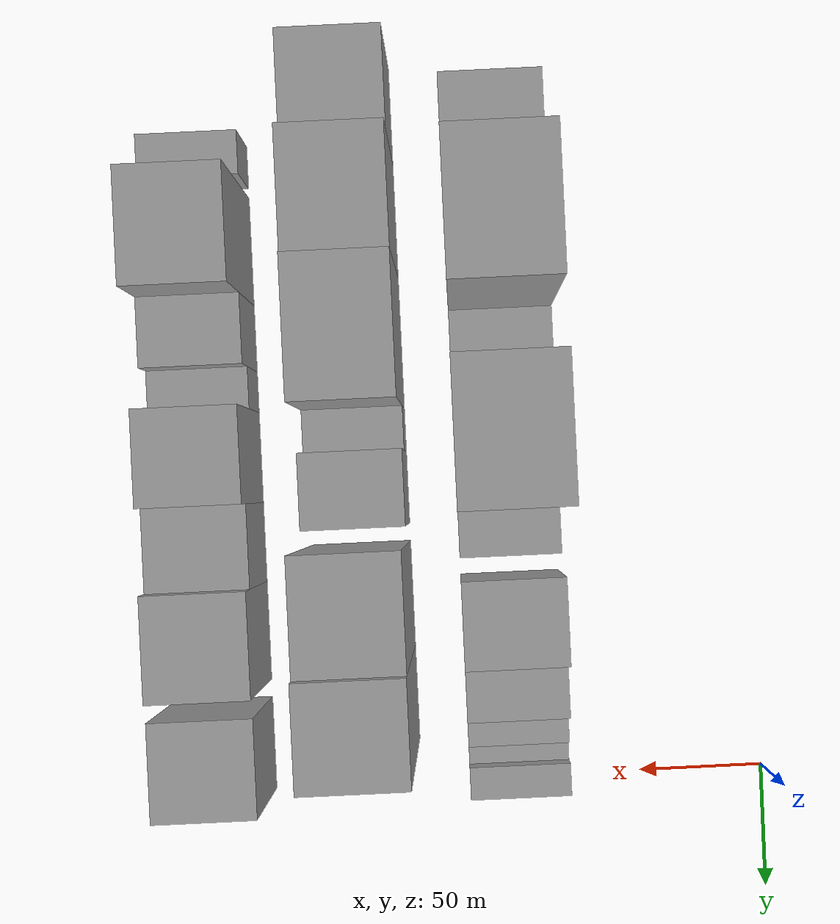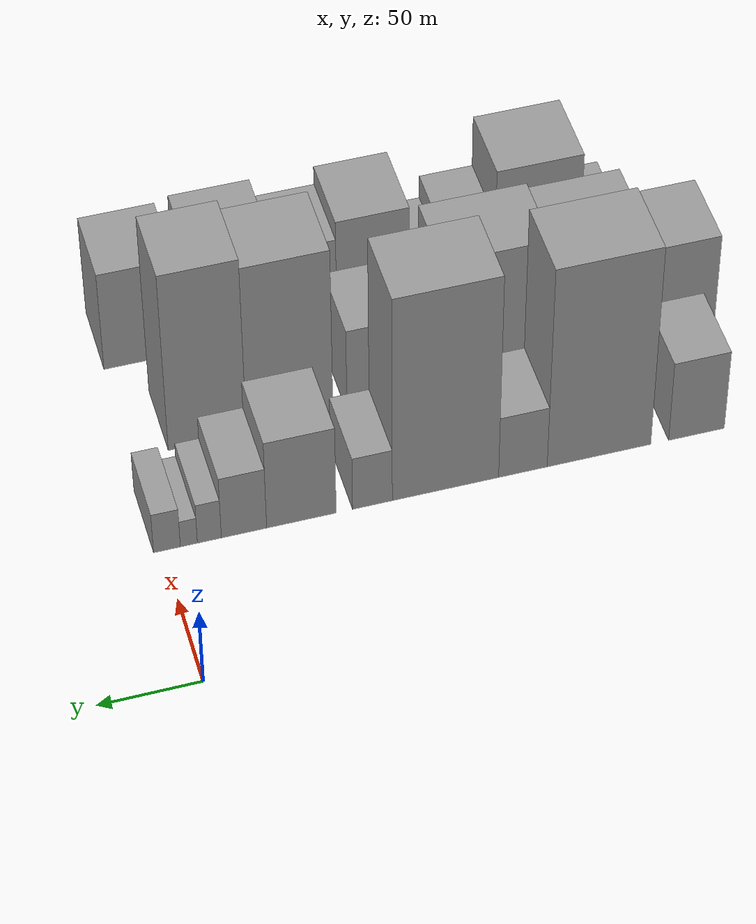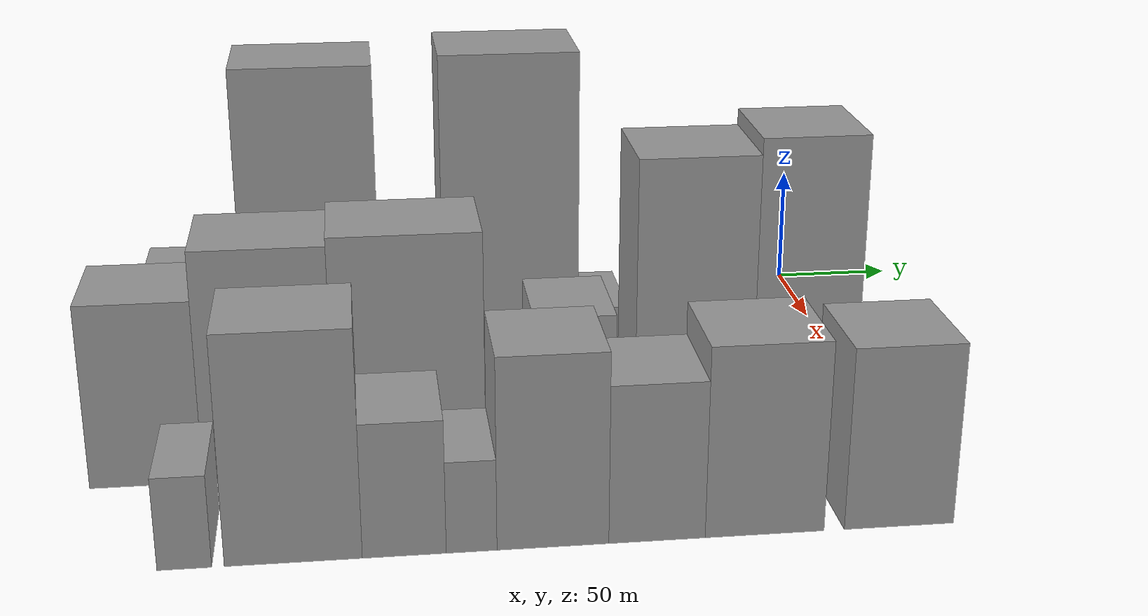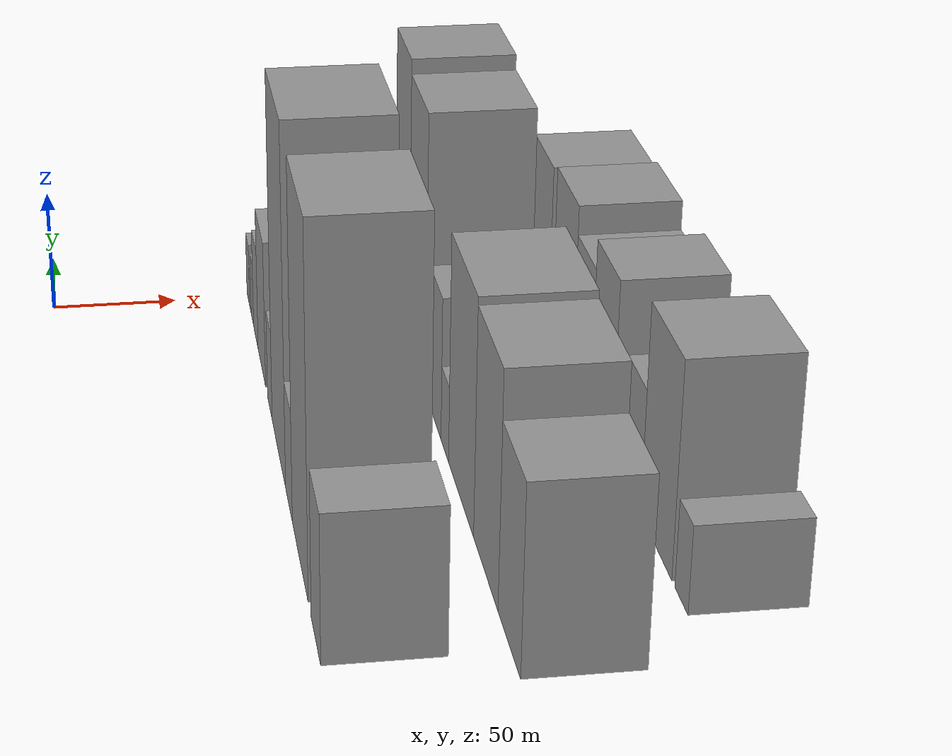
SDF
<sdf version="1.6">
 <world name="default">
  <model name="building_11">
   <static>1</static>
   <pose>100.0000 -263.9898 0 0.000000 0.000000 0.000000</pose>
   <link name="link">
    <pose>0 0 27.00 0 0 0</pose>
    <collision name="collision"><geometry><box><size>40.0000 28.3131 54.0000</size></box></geometry></collision>
    <visual name="visual">
     <cast_shadows>0</cast_shadows>
     <geometry><box><size>40.0000 28.3131 54.0000</size></box></geometry>
     <material>
      <script>
       <uri>model://grey_wall/materials/scripts</uri>
       <uri>model://grey_wall/materials/textures</uri>
       <name>vrc/grey_wall</name>
      </script>
     </material>
    </visual>
   </link>
  </model>
  <model name="building_12">
   <static>1</static>
   <pose>100.0000 -214.7420 0 0.000000 0.000000 0.000000</pose>
   <link name="link">
    <pose>0 0 67.50 0 0 0</pose>
    <collision name="collision"><geometry><box><size>40.0000 52.1824 135.0000</size></box></geometry></collision>
    <visual name="visual">
     <cast_shadows>0</cast_shadows>
     <geometry><box><size>40.0000 52.1824 135.0000</size></box></geometry>
     <material>
      <script>
       <uri>model://grey_wall/materials/scripts</uri>
       <uri>model://grey_wall/materials/textures</uri>
       <name>vrc/grey_wall</name>
      </script>
     </material>
    </visual>
   </link>
  </model>
  <model name="building_13">
   <static>1</static>
   <pose>100.0000 -176.5291 0 0.000000 0.000000 0.000000</pose>
   <link name="link">
    <pose>0 0 21.00 0 0 0</pose>
    <collision name="collision"><geometry><box><size>40.0000 24.2435 42.0000</size></box></geometry></collision>
    <visual name="visual">
     <cast_shadows>0</cast_shadows>
     <geometry><box><size>40.0000 24.2435 42.0000</size></box></geometry>
     <material>
      <script>
       <uri>model://grey_wall/materials/scripts</uri>
       <uri>model://grey_wall/materials/textures</uri>
       <name>vrc/grey_wall</name>
      </script>
     </material>
    </visual>
   </link>
  </model>
  <model name="building_14">
   <static>1</static>
   <pose>100.0000 -138.0995 0 0.000000 0.000000 0.000000</pose>
   <link name="link">
    <pose>0 0 69.00 0 0 0</pose>
    <collision name="collision"><geometry><box><size>40.0000 52.6157 138.0000</size></box></geometry></collision>
    <visual name="visual">
     <cast_shadows>0</cast_shadows>
     <geometry><box><size>40.0000 52.6157 138.0000</size></box></geometry>
     <material>
      <script>
       <uri>model://grey_wall/materials/scripts</uri>
       <uri>model://grey_wall/materials/textures</uri>
       <name>vrc/grey_wall</name>
      </script>
     </material>
    </visual>
   </link>
  </model>
  <model name="building_15">
   <static>1</static>
   <pose>100.0000 -102.0378 0 0.000000 0.000000 0.000000</pose>
   <link name="link">
    <pose>0 0 18.00 0 0 0</pose>
    <collision name="collision"><geometry><box><size>40.0000 19.5076 36.0000</size></box></geometry></collision>
    <visual name="visual">
     <cast_shadows>0</cast_shadows>
     <geometry><box><size>40.0000 19.5076 36.0000</size></box></geometry>
     <material>
      <script>
       <uri>model://grey_wall/materials/scripts</uri>
       <uri>model://grey_wall/materials/textures</uri>
       <name>vrc/grey_wall</name>
      </script>
     </material>
    </visual>
   </link>
  </model>
  <model name="building_16">
   <static>1</static>
   <pose>100.0000 -67.3096 0 0.000000 0.000000 0.000000</pose>
   <link name="link">
    <pose>0 0 30.00 0 0 0</pose>
    <collision name="collision"><geometry><box><size>40.0000 33.9488 60.0000</size></box></geometry></collision>
    <visual name="visual">
     <cast_shadows>0</cast_shadows>
     <geometry><box><size>40.0000 33.9488 60.0000</size></box></geometry>
     <material>
      <script>
       <uri>model://grey_wall/materials/scripts</uri>
       <uri>model://grey_wall/materials/textures</uri>
       <name>vrc/grey_wall</name>
      </script>
     </material>
    </visual>
   </link>
  </model>
  <model name="building_17">
   <static>1</static>
   <pose>100.0000 -39.3773 0 0.000000 0.000000 0.000000</pose>
   <link name="link">
    <pose>0 0 21.00 0 0 0</pose>
    <collision name="collision"><geometry><box><size>40.0000 21.9160 42.0000</size></box></geometry></collision>
    <visual name="visual">
     <cast_shadows>0</cast_shadows>
     <geometry><box><size>40.0000 21.9160 42.0000</size></box></geometry>
     <material>
      <script>
       <uri>model://grey_wall/materials/scripts</uri>
       <uri>model://grey_wall/materials/textures</uri>
       <name>vrc/grey_wall</name>
      </script>
     </material>
    </visual>
   </link>
  </model>
  <model name="building_18">
   <static>1</static>
   <pose>100.0000 -22.6179 0 0.000000 0.000000 0.000000</pose>
   <link name="link">
    <pose>0 0 13.50 0 0 0</pose>
    <collision name="collision"><geometry><box><size>40.0000 11.6028 27.0000</size></box></geometry></collision>
    <visual name="visual">
     <cast_shadows>0</cast_shadows>
     <geometry><box><size>40.0000 11.6028 27.0000</size></box></geometry>
     <material>
      <script>
       <uri>model://grey_wall/materials/scripts</uri>
       <uri>model://grey_wall/materials/textures</uri>
       <name>vrc/grey_wall</name>
      </script>
     </material>
    </visual>
   </link>
  </model>
  <model name="building_19">
   <static>1</static>
   <pose>100.0000 -12.7215 0 0.000000 0.000000 0.000000</pose>
   <link name="link">
    <pose>0 0 9.00 0 0 0</pose>
    <collision name="collision"><geometry><box><size>40.0000 8.1899 18.0000</size></box></geometry></collision>
    <visual name="visual">
     <cast_shadows>0</cast_shadows>
     <geometry><box><size>40.0000 8.1899 18.0000</size></box></geometry>
     <material>
      <script>
       <uri>model://grey_wall/materials/scripts</uri>
       <uri>model://grey_wall/materials/textures</uri>
       <name>vrc/grey_wall</name>
      </script>
     </material>
    </visual>
   </link>
  </model>
  <model name="building_20">
   <static>1</static>
   <pose>100.0000 -2.1696 0 0.000000 0.000000 0.000000</pose>
   <link name="link">
    <pose>0 0 13.50 0 0 0</pose>
    <collision name="collision"><geometry><box><size>40.0000 12.9139 27.0000</size></box></geometry></collision>
    <visual name="visual">
     <cast_shadows>0</cast_shadows>
     <geometry><box><size>40.0000 12.9139 27.0000</size></box></geometry>
     <material>
      <script>
       <uri>model://grey_wall/materials/scripts</uri>
       <uri>model://grey_wall/materials/textures</uri>
       <name>vrc/grey_wall</name>
      </script>
     </material>
    </visual>
   </link>
  </model>
  <model name="building_43">
   <static>1</static>
   <pose>160.0000 -273.8139 0 0.000000 0.000000 0.000000</pose>
   <link name="link">
    <pose>0 0 34.50 0 0 0</pose>
    <collision name="collision"><geometry><box><size>40.0000 39.4525 69.0000</size></box></geometry></collision>
    <visual name="visual">
     <cast_shadows>0</cast_shadows>
     <geometry><box><size>40.0000 39.4525 69.0000</size></box></geometry>
     <material>
      <script>
       <uri>model://grey_wall/materials/scripts</uri>
       <uri>model://grey_wall/materials/textures</uri>
       <name>vrc/grey_wall</name>
      </script>
     </material>
    </visual>
   </link>
  </model>
  <model name="building_44">
   <static>1</static>
   <pose>160.0000 -230.6634 0 0.000000 0.000000 0.000000</pose>
   <link name="link">
    <pose>0 0 43.50 0 0 0</pose>
    <collision name="collision"><geometry><box><size>40.0000 46.8486 87.0000</size></box></geometry></collision>
    <visual name="visual">
     <cast_shadows>0</cast_shadows>
     <geometry><box><size>40.0000 46.8486 87.0000</size></box></geometry>
     <material>
      <script>
       <uri>model://grey_wall/materials/scripts</uri>
       <uri>model://grey_wall/materials/textures</uri>
       <name>vrc/grey_wall</name>
      </script>
     </material>
    </visual>
   </link>
  </model>
  <model name="building_45">
   <static>1</static>
   <pose>160.0000 -180.2933 0 0.000000 0.000000 0.000000</pose>
   <link name="link">
    <pose>0 0 45.00 0 0 0</pose>
    <collision name="collision"><geometry><box><size>40.0000 53.8916 90.0000</size></box></geometry></collision>
    <visual name="visual">
     <cast_shadows>0</cast_shadows>
     <geometry><box><size>40.0000 53.8916 90.0000</size></box></geometry>
     <material>
      <script>
       <uri>model://grey_wall/materials/scripts</uri>
       <uri>model://grey_wall/materials/textures</uri>
       <name>vrc/grey_wall</name>
      </script>
     </material>
    </visual>
   </link>
  </model>
  <model name="building_46">
   <static>1</static>
   <pose>160.0000 -144.5424 0 0.000000 0.000000 0.000000</pose>
   <link name="link">
    <pose>0 0 15.00 0 0 0</pose>
    <collision name="collision"><geometry><box><size>40.0000 17.6103 30.0000</size></box></geometry></collision>
    <visual name="visual">
     <cast_shadows>0</cast_shadows>
     <geometry><box><size>40.0000 17.6103 30.0000</size></box></geometry>
     <material>
      <script>
       <uri>model://grey_wall/materials/scripts</uri>
       <uri>model://grey_wall/materials/textures</uri>
       <name>vrc/grey_wall</name>
      </script>
     </material>
    </visual>
   </link>
  </model>
  <model name="building_47">
   <static>1</static>
   <pose>160.0000 -120.9377 0 0.000000 0.000000 0.000000</pose>
   <link name="link">
    <pose>0 0 28.50 0 0 0</pose>
    <collision name="collision"><geometry><box><size>40.0000 29.5990 57.0000</size></box></geometry></collision>
    <visual name="visual">
     <cast_shadows>0</cast_shadows>
     <geometry><box><size>40.0000 29.5990 57.0000</size></box></geometry>
     <material>
      <script>
       <uri>model://grey_wall/materials/scripts</uri>
       <uri>model://grey_wall/materials/textures</uri>
       <name>vrc/grey_wall</name>
      </script>
     </material>
    </visual>
   </link>
  </model>
  <model name="building_48">
   <static>1</static>
   <pose>160.0000 -77.5481 0 0.000000 0.000000 0.000000</pose>
   <link name="link">
    <pose>0 0 57.00 0 0 0</pose>
    <collision name="collision"><geometry><box><size>40.0000 43.1801 114.0000</size></box></geometry></collision>
    <visual name="visual">
     <cast_shadows>0</cast_shadows>
     <geometry><box><size>40.0000 43.1801 114.0000</size></box></geometry>
     <material>
      <script>
       <uri>model://grey_wall/materials/scripts</uri>
       <uri>model://grey_wall/materials/textures</uri>
       <name>vrc/grey_wall</name>
      </script>
     </material>
    </visual>
   </link>
  </model>
  <model name="building_49">
   <static>1</static>
   <pose>160.0000 -36.6136 0 0.000000 0.000000 0.000000</pose>
   <link name="link">
    <pose>0 0 60.00 0 0 0</pose>
    <collision name="collision"><geometry><box><size>40.0000 38.6889 120.0000</size></box></geometry></collision>
    <visual name="visual">
     <cast_shadows>0</cast_shadows>
     <geometry><box><size>40.0000 38.6889 120.0000</size></box></geometry>
     <material>
      <script>
       <uri>model://grey_wall/materials/scripts</uri>
       <uri>model://grey_wall/materials/textures</uri>
       <name>vrc/grey_wall</name>
      </script>
     </material>
    </visual>
   </link>
  </model>
  <model name="building_78">
   <static>1</static>
   <pose>220.0000 -255.8481 0 0.000000 0.000000 0.000000</pose>
   <link name="link">
    <pose>0 0 16.50 0 0 0</pose>
    <collision name="collision"><geometry><box><size>40.0000 17.3635 33.0000</size></box></geometry></collision>
    <visual name="visual">
     <cast_shadows>0</cast_shadows>
     <geometry><box><size>40.0000 17.3635 33.0000</size></box></geometry>
     <material>
      <script>
       <uri>model://grey_wall/materials/scripts</uri>
       <uri>model://grey_wall/materials/textures</uri>
       <name>vrc/grey_wall</name>
      </script>
     </material>
    </visual>
   </link>
  </model>
  <model name="building_79">
   <static>1</static>
   <pose>220.0000 -220.9776 0 0.000000 0.000000 0.000000</pose>
   <link name="link">
    <pose>0 0 40.50 0 0 0</pose>
    <collision name="collision"><geometry><box><size>40.0000 44.3773 81.0000</size></box></geometry></collision>
    <visual name="visual">
     <cast_shadows>0</cast_shadows>
     <geometry><box><size>40.0000 44.3773 81.0000</size></box></geometry>
     <material>
      <script>
       <uri>model://grey_wall/materials/scripts</uri>
       <uri>model://grey_wall/materials/textures</uri>
       <name>vrc/grey_wall</name>
      </script>
     </material>
    </visual>
   </link>
  </model>
  <model name="building_80">
   <static>1</static>
   <pose>220.0000 -185.1038 0 0.000000 0.000000 0.000000</pose>
   <link name="link">
    <pose>0 0 24.00 0 0 0</pose>
    <collision name="collision"><geometry><box><size>40.0000 27.3704 48.0000</size></box></geometry></collision>
    <visual name="visual">
     <cast_shadows>0</cast_shadows>
     <geometry><box><size>40.0000 27.3704 48.0000</size></box></geometry>
     <material>
      <script>
       <uri>model://grey_wall/materials/scripts</uri>
       <uri>model://grey_wall/materials/textures</uri>
       <name>vrc/grey_wall</name>
      </script>
     </material>
    </visual>
   </link>
  </model>
  <model name="building_81">
   <static>1</static>
   <pose>220.0000 -163.0716 0 0.000000 0.000000 0.000000</pose>
   <link name="link">
    <pose>0 0 16.50 0 0 0</pose>
    <collision name="collision"><geometry><box><size>40.0000 16.6939 33.0000</size></box></geometry></collision>
    <visual name="visual">
     <cast_shadows>0</cast_shadows>
     <geometry><box><size>40.0000 16.6939 33.0000</size></box></geometry>
     <material>
      <script>
       <uri>model://grey_wall/materials/scripts</uri>
       <uri>model://grey_wall/materials/textures</uri>
       <name>vrc/grey_wall</name>
      </script>
     </material>
    </visual>
   </link>
  </model>
  <model name="building_82">
   <static>1</static>
   <pose>220.0000 -136.1358 0 0.000000 0.000000 0.000000</pose>
   <link name="link">
    <pose>0 0 34.50 0 0 0</pose>
    <collision name="collision"><geometry><box><size>40.0000 37.1777 69.0000</size></box></geometry></collision>
    <visual name="visual">
     <cast_shadows>0</cast_shadows>
     <geometry><box><size>40.0000 37.1777 69.0000</size></box></geometry>
     <material>
      <script>
       <uri>model://grey_wall/materials/scripts</uri>
       <uri>model://grey_wall/materials/textures</uri>
       <name>vrc/grey_wall</name>
      </script>
     </material>
    </visual>
   </link>
  </model>
  <model name="building_83">
   <static>1</static>
   <pose>220.0000 -101.3084 0 0.000000 0.000000 0.000000</pose>
   <link name="link">
    <pose>0 0 28.50 0 0 0</pose>
    <collision name="collision"><geometry><box><size>40.0000 32.4771 57.0000</size></box></geometry></collision>
    <visual name="visual">
     <cast_shadows>0</cast_shadows>
     <geometry><box><size>40.0000 32.4771 57.0000</size></box></geometry>
     <material>
      <script>
       <uri>model://grey_wall/materials/scripts</uri>
       <uri>model://grey_wall/materials/textures</uri>
       <name>vrc/grey_wall</name>
      </script>
     </material>
    </visual>
   </link>
  </model>
  <model name="building_84">
   <static>1</static>
   <pose>220.0000 -64.7450 0 0.000000 0.000000 0.000000</pose>
   <link name="link">
    <pose>0 0 34.50 0 0 0</pose>
    <collision name="collision"><geometry><box><size>40.0000 40.6498 69.0000</size></box></geometry></collision>
    <visual name="visual">
     <cast_shadows>0</cast_shadows>
     <geometry><box><size>40.0000 40.6498 69.0000</size></box></geometry>
     <material>
      <script>
       <uri>model://grey_wall/materials/scripts</uri>
       <uri>model://grey_wall/materials/textures</uri>
       <name>vrc/grey_wall</name>
      </script>
     </material>
    </visual>
   </link>
  </model>
  <model name="building_85">
   <static>1</static>
   <pose>220.0000 -18.4267 0 0.000000 0.000000 0.000000</pose>
   <link name="link">
    <pose>0 0 33.00 0 0 0</pose>
    <collision name="collision"><geometry><box><size>40.0000 37.9868 66.0000</size></box></geometry></collision>
    <visual name="visual">
     <cast_shadows>0</cast_shadows>
     <geometry><box><size>40.0000 37.9868 66.0000</size></box></geometry>
     <material>
      <script>
       <uri>model://grey_wall/materials/scripts</uri>
       <uri>model://grey_wall/materials/textures</uri>
       <name>vrc/grey_wall</name>
      </script>
     </material>
    </visual>
   </link>
  </model>
 </world>
</sdf>
